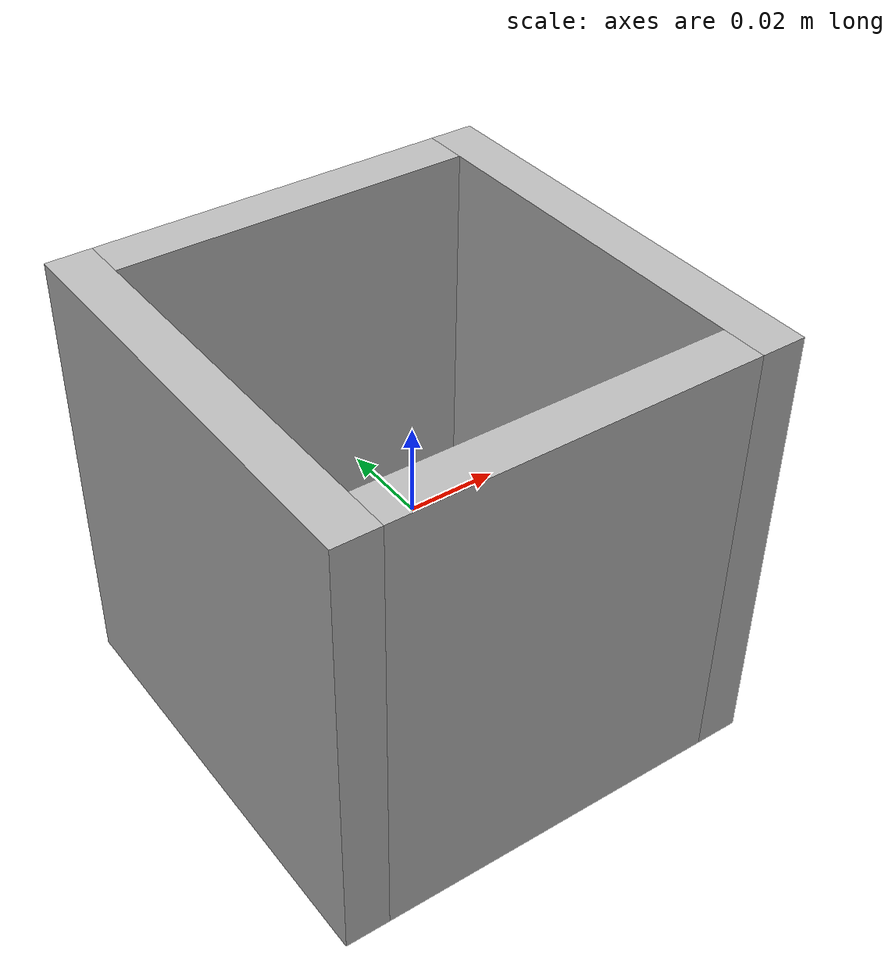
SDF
<?xml version='1.0'?>
<sdf version='1.7'>
  <model name='hollow_cube_s10_t1cm'>
    <link name='base'>
      <inertial>
        <pose>0 0 0 0 -0 0</pose>
        <mass>0.5</mass>
        <inertia>
          <ixx>0.0005</ixx>
          <ixy>0</ixy>
          <ixz>0</ixz>
          <iyy>0.0005</iyy>
          <iyz>0</iyz>
          <izz>0.0005</izz>
        </inertia>
      </inertial>
      <self_collide>0</self_collide>
      <enable_wind>0</enable_wind>
      <kinematic>0</kinematic>
      <pose>0 0 0 0 -0 0</pose>
      <visual name='base_fixed_joint_lump__back_visual_visual'>
        <pose>0 0.045 0 0 -0 0</pose>
        <geometry>
          <box>
            <size>0.08 0.01 0.1</size>
          </box>
        </geometry>
        <material>
          <shader type='pixel'/>
        </material>
        <transparency>0</transparency>
        <cast_shadows>1</cast_shadows>
      </visual>
      <visual name='base_fixed_joint_lump__front_visual_visual_2'>
        <pose>0 -0.045 0 0 -0 0</pose>
        <geometry>
          <box>
            <size>0.08 0.01 0.1</size>
          </box>
        </geometry>
        <material>
          <shader type='pixel'/>
        </material>
        <transparency>0</transparency>
        <cast_shadows>1</cast_shadows>
      </visual>
      <visual name='base_fixed_joint_lump__bottom_visual_visual_1'>
        <pose>0 0 -0.045 0 -0 0</pose>
        <geometry>
          <box>
            <size>0.08 0.08 0.01</size>
          </box>
        </geometry>
        <material>
          <shader type='pixel'/>
        </material>
        <transparency>0</transparency>
        <cast_shadows>1</cast_shadows>
      </visual>
      <visual name='base_fixed_joint_lump__right_visual_visual_4'>
        <pose>0.045 0 0 0 -0 0</pose>
        <geometry>
          <box>
            <size>0.01 0.1 0.1</size>
          </box>
        </geometry>
        <material>
          <shader type='pixel'/>
        </material>
        <transparency>0</transparency>
        <cast_shadows>1</cast_shadows>
      </visual>
      <visual name='base_fixed_joint_lump__left_visual_visual_3'>
        <pose>-0.045 0 0 0 -0 0</pose>
        <geometry>
          <box>
            <size>0.01 0.1 0.1</size>
          </box>
        </geometry>
        <material>
          <shader type='pixel'/>
        </material>
        <transparency>0</transparency>
        <cast_shadows>1</cast_shadows>
      </visual>
      <collision name='base_fixed_joint_lump__bottom_collision_collision_1'>
        <laser_retro>0</laser_retro>
        <max_contacts>10</max_contacts>
        <pose>0 0 -0.045 0 -0 0</pose>
        <geometry>
          <box>
            <size>0.08 0.08 0.01</size>
          </box>
        </geometry>
        <surface>
          <friction>
            <ode>
              <mu>1</mu>
              <mu2>1</mu2>
              <fdir1>0 0 0</fdir1>
              <slip1>0</slip1>
              <slip2>0</slip2>
            </ode>
            <torsional>
              <coefficient>1</coefficient>
              <patch_radius>0</patch_radius>
              <surface_radius>0</surface_radius>
              <use_patch_radius>1</use_patch_radius>
              <ode>
                <slip>0</slip>
              </ode>
            </torsional>
          </friction>
          <bounce>
            <restitution_coefficient>0</restitution_coefficient>
            <threshold>1e+06</threshold>
          </bounce>
          <contact>
            <collide_without_contact>0</collide_without_contact>
            <collide_without_contact_bitmask>1</collide_without_contact_bitmask>
            <collide_bitmask>1</collide_bitmask>
            <ode>
              <soft_cfm>0</soft_cfm>
              <soft_erp>0.2</soft_erp>
              <kp>1e+13</kp>
              <kd>1</kd>
              <max_vel>0.01</max_vel>
              <min_depth>0</min_depth>
            </ode>
            <bullet>
              <split_impulse>1</split_impulse>
              <split_impulse_penetration_threshold>-0.01</split_impulse_penetration_threshold>
              <soft_cfm>0</soft_cfm>
              <soft_erp>0.2</soft_erp>
              <kp>1e+13</kp>
              <kd>1</kd>
            </bullet>
          </contact>
        </surface>
      </collision>
      <collision name='base_fixed_joint_lump__back_collision_collision'>
        <laser_retro>0</laser_retro>
        <max_contacts>10</max_contacts>
        <pose>0 0.045 0 0 -0 0</pose>
        <geometry>
          <box>
            <size>0.08 0.01 0.1</size>
          </box>
        </geometry>
        <surface>
          <friction>
            <ode>
              <mu>1</mu>
              <mu2>1</mu2>
              <fdir1>0 0 0</fdir1>
              <slip1>0</slip1>
              <slip2>0</slip2>
            </ode>
            <torsional>
              <coefficient>1</coefficient>
              <patch_radius>0</patch_radius>
              <surface_radius>0</surface_radius>
              <use_patch_radius>1</use_patch_radius>
              <ode>
                <slip>0</slip>
              </ode>
            </torsional>
          </friction>
          <bounce>
            <restitution_coefficient>0</restitution_coefficient>
            <threshold>1e+06</threshold>
          </bounce>
          <contact>
            <collide_without_contact>0</collide_without_contact>
            <collide_without_contact_bitmask>1</collide_without_contact_bitmask>
            <collide_bitmask>1</collide_bitmask>
            <ode>
              <soft_cfm>0</soft_cfm>
              <soft_erp>0.2</soft_erp>
              <kp>1e+13</kp>
              <kd>1</kd>
              <max_vel>0.01</max_vel>
              <min_depth>0</min_depth>
            </ode>
            <bullet>
              <split_impulse>1</split_impulse>
              <split_impulse_penetration_threshold>-0.01</split_impulse_penetration_threshold>
              <soft_cfm>0</soft_cfm>
              <soft_erp>0.2</soft_erp>
              <kp>1e+13</kp>
              <kd>1</kd>
            </bullet>
          </contact>
        </surface>
      </collision>
      <collision name='base_fixed_joint_lump__front_collision_collision_2'>
        <laser_retro>0</laser_retro>
        <max_contacts>10</max_contacts>
        <pose>0 -0.045 0 0 -0 0</pose>
        <geometry>
          <box>
            <size>0.08 0.01 0.1</size>
          </box>
        </geometry>
        <surface>
          <friction>
            <ode>
              <mu>1</mu>
              <mu2>1</mu2>
              <fdir1>0 0 0</fdir1>
              <slip1>0</slip1>
              <slip2>0</slip2>
            </ode>
            <torsional>
              <coefficient>1</coefficient>
              <patch_radius>0</patch_radius>
              <surface_radius>0</surface_radius>
              <use_patch_radius>1</use_patch_radius>
              <ode>
                <slip>0</slip>
              </ode>
            </torsional>
          </friction>
          <bounce>
            <restitution_coefficient>0</restitution_coefficient>
            <threshold>1e+06</threshold>
          </bounce>
          <contact>
            <collide_without_contact>0</collide_without_contact>
            <collide_without_contact_bitmask>1</collide_without_contact_bitmask>
            <collide_bitmask>1</collide_bitmask>
            <ode>
              <soft_cfm>0</soft_cfm>
              <soft_erp>0.2</soft_erp>
              <kp>1e+13</kp>
              <kd>1</kd>
              <max_vel>0.01</max_vel>
              <min_depth>0</min_depth>
            </ode>
            <bullet>
              <split_impulse>1</split_impulse>
              <split_impulse_penetration_threshold>-0.01</split_impulse_penetration_threshold>
              <soft_cfm>0</soft_cfm>
              <soft_erp>0.2</soft_erp>
              <kp>1e+13</kp>
              <kd>1</kd>
            </bullet>
          </contact>
        </surface>
      </collision>
      <collision name='base_fixed_joint_lump__left_collision_collision_3'>
        <laser_retro>0</laser_retro>
        <max_contacts>10</max_contacts>
        <pose>-0.045 0 0 0 -0 0</pose>
        <geometry>
          <box>
            <size>0.01 0.1 0.1</size>
          </box>
        </geometry>
        <surface>
          <friction>
            <ode>
              <mu>1</mu>
              <mu2>1</mu2>
              <fdir1>0 0 0</fdir1>
              <slip1>0</slip1>
              <slip2>0</slip2>
            </ode>
            <torsional>
              <coefficient>1</coefficient>
              <patch_radius>0</patch_radius>
              <surface_radius>0</surface_radius>
              <use_patch_radius>1</use_patch_radius>
              <ode>
                <slip>0</slip>
              </ode>
            </torsional>
          </friction>
          <bounce>
            <restitution_coefficient>0</restitution_coefficient>
            <threshold>1e+06</threshold>
          </bounce>
          <contact>
            <collide_without_contact>0</collide_without_contact>
            <collide_without_contact_bitmask>1</collide_without_contact_bitmask>
            <collide_bitmask>1</collide_bitmask>
            <ode>
              <soft_cfm>0</soft_cfm>
              <soft_erp>0.2</soft_erp>
              <kp>1e+13</kp>
              <kd>1</kd>
              <max_vel>0.01</max_vel>
              <min_depth>0</min_depth>
            </ode>
            <bullet>
              <split_impulse>1</split_impulse>
              <split_impulse_penetration_threshold>-0.01</split_impulse_penetration_threshold>
              <soft_cfm>0</soft_cfm>
              <soft_erp>0.2</soft_erp>
              <kp>1e+13</kp>
              <kd>1</kd>
            </bullet>
          </contact>
        </surface>
      </collision>
      <collision name='base_fixed_joint_lump__right_collision_collision_4'>
        <laser_retro>0</laser_retro>
        <max_contacts>10</max_contacts>
        <pose>0.045 0 0 0 -0 0</pose>
        <geometry>
          <box>
            <size>0.01 0.1 0.1</size>
          </box>
        </geometry>
        <surface>
          <friction>
            <ode>
              <mu>1</mu>
              <mu2>1</mu2>
              <fdir1>0 0 0</fdir1>
              <slip1>0</slip1>
              <slip2>0</slip2>
            </ode>
            <torsional>
              <coefficient>1</coefficient>
              <patch_radius>0</patch_radius>
              <surface_radius>0</surface_radius>
              <use_patch_radius>1</use_patch_radius>
              <ode>
                <slip>0</slip>
              </ode>
            </torsional>
          </friction>
          <bounce>
            <restitution_coefficient>0</restitution_coefficient>
            <threshold>1e+06</threshold>
          </bounce>
          <contact>
            <collide_without_contact>0</collide_without_contact>
            <collide_without_contact_bitmask>1</collide_without_contact_bitmask>
            <collide_bitmask>1</collide_bitmask>
            <ode>
              <soft_cfm>0</soft_cfm>
              <soft_erp>0.2</soft_erp>
              <kp>1e+13</kp>
              <kd>1</kd>
              <max_vel>0.01</max_vel>
              <min_depth>0</min_depth>
            </ode>
            <bullet>
              <split_impulse>1</split_impulse>
              <split_impulse_penetration_threshold>-0.01</split_impulse_penetration_threshold>
              <soft_cfm>0</soft_cfm>
              <soft_erp>0.2</soft_erp>
              <kp>1e+13</kp>
              <kd>1</kd>
            </bullet>
          </contact>
        </surface>
      </collision>
    </link>
    <static>0</static>
    <allow_auto_disable>1</allow_auto_disable>
  </model>
</sdf>
